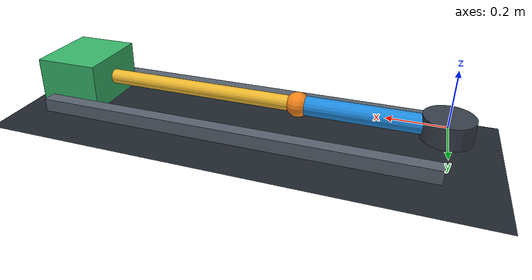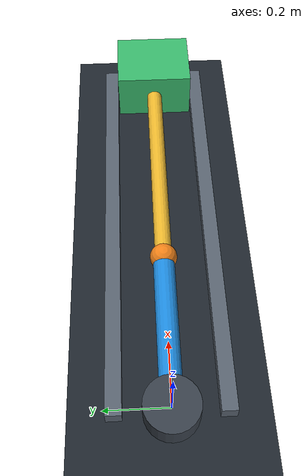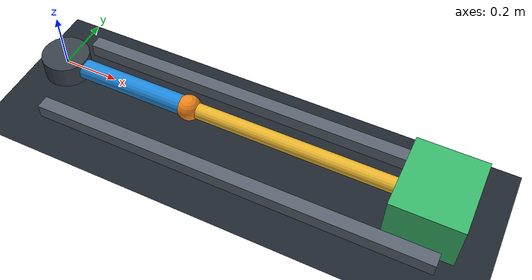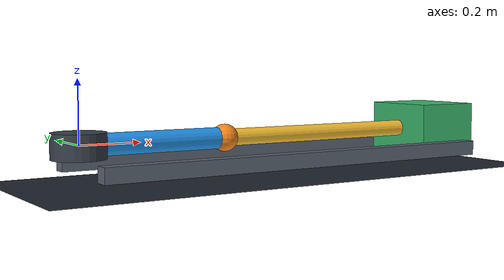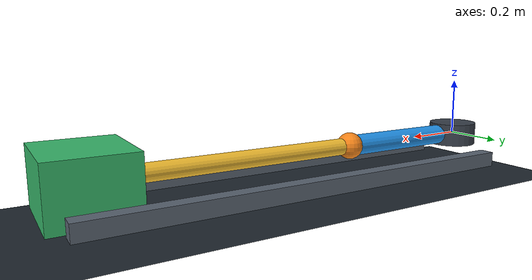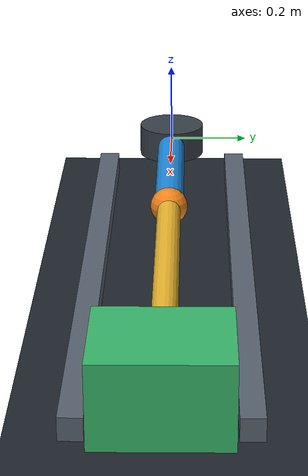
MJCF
<mujoco model="slider_crank_velocity_theta60">
  <compiler angle="radian" inertiafromgeom="true"/>
  <option gravity="0 0 0" timestep="0.001" integrator="implicitfast" iterations="80" tolerance="1e-10"/>
  <statistic center="0.683013 0 0" extent="1.45"/>
  <visual>
    <global azimuth="90" elevation="-90"/>
    <scale jointlength="0.12" jointwidth="0.025"/>
  </visual>
  <default>
    <joint armature="0.001" damping="0" frictionloss="0"/>
    <geom contype="0" conaffinity="0" condim="1"/>
  </default>

  <worldbody>
    <light name="key_light" pos="0.7 -2.5 3.5" dir="0 0 -1"/>
    <geom name="ground" type="plane" size="1.55 0.85 0.02" pos="0.68 0 -0.13" rgba="0.12 0.15 0.18 1"/>
    <geom name="guide_upper" type="box" size="0.72 0.025 0.025" pos="0.72 0.17 -0.07" rgba="0.35 0.39 0.44 1"/>
    <geom name="guide_lower" type="box" size="0.72 0.025 0.025" pos="0.72 -0.17 -0.07" rgba="0.35 0.39 0.44 1"/>
    <geom name="pivot_base" type="cylinder" size="0.085 0.04" pos="0 0 0" rgba="0.22 0.25 0.29 1"/>

    <body name="crank" pos="0 0 0">
      <joint name="crank_hinge" type="hinge" axis="0 0 1" limited="false"/>
      <geom name="crank_geom" type="capsule" fromto="0 0 0 0.5 0 0" size="0.035" mass="0.01" rgba="0.12 0.55 0.88 1"/>
      <site name="point_a" pos="0.5 0 0" size="0.045" rgba="0.96 0.52 0.10 1"/>
      <body name="connecting_rod" pos="0.5 0 0">
        <joint name="rod_hinge_a" type="hinge" axis="0 0 1" limited="false"/>
        <geom name="rod_geom" type="capsule" fromto="0 0 0 0.8660254 0 0" size="0.028" mass="0.005" rgba="0.93 0.72 0.18 1"/>
        <site name="rod_end_b" pos="0.8660254 0 0" size="0.04" rgba="0.96 0.52 0.10 1"/>
      </body>
    </body>

    <body name="slider" pos="1.3660254 0 0">
      <joint name="slider_x" type="slide" axis="1 0 0" limited="true" range="-1.05 0.03"/>
      <geom name="slider_geom" type="box" size="0.12 0.14 0.09" mass="1.0" rgba="0.22 0.72 0.42 1"/>
      <site name="point_b" pos="0 0 0" size="0.045" rgba="0.96 0.52 0.10 1"/>
    </body>
  </worldbody>

  <equality>
    <connect name="pin_b" body1="connecting_rod" body2="slider" anchor="0.8660254 0 0" solref="0.01 1" solimp="0.999 0.9999 0.001"/>
  </equality>

  <actuator>
    <velocity name="constant_speed_drive" joint="crank_hinge" kv="100" ctrlrange="0 8" ctrllimited="true"/>
  </actuator>
</mujoco>
